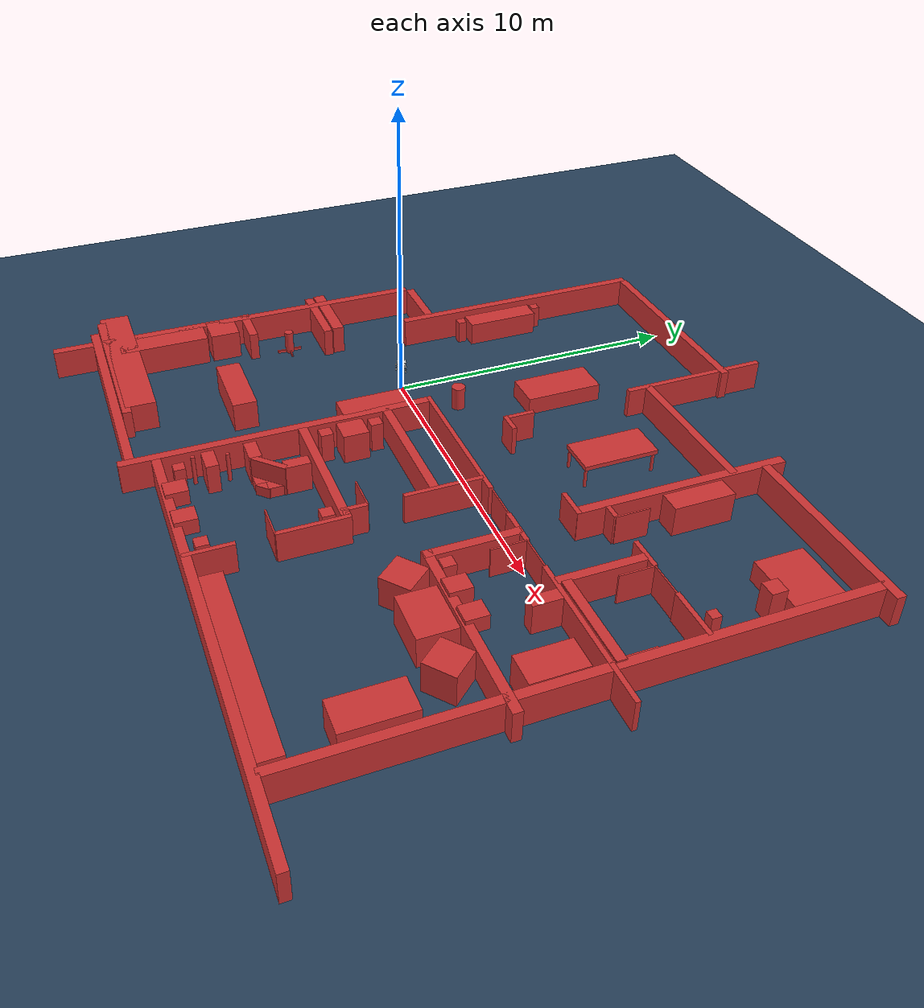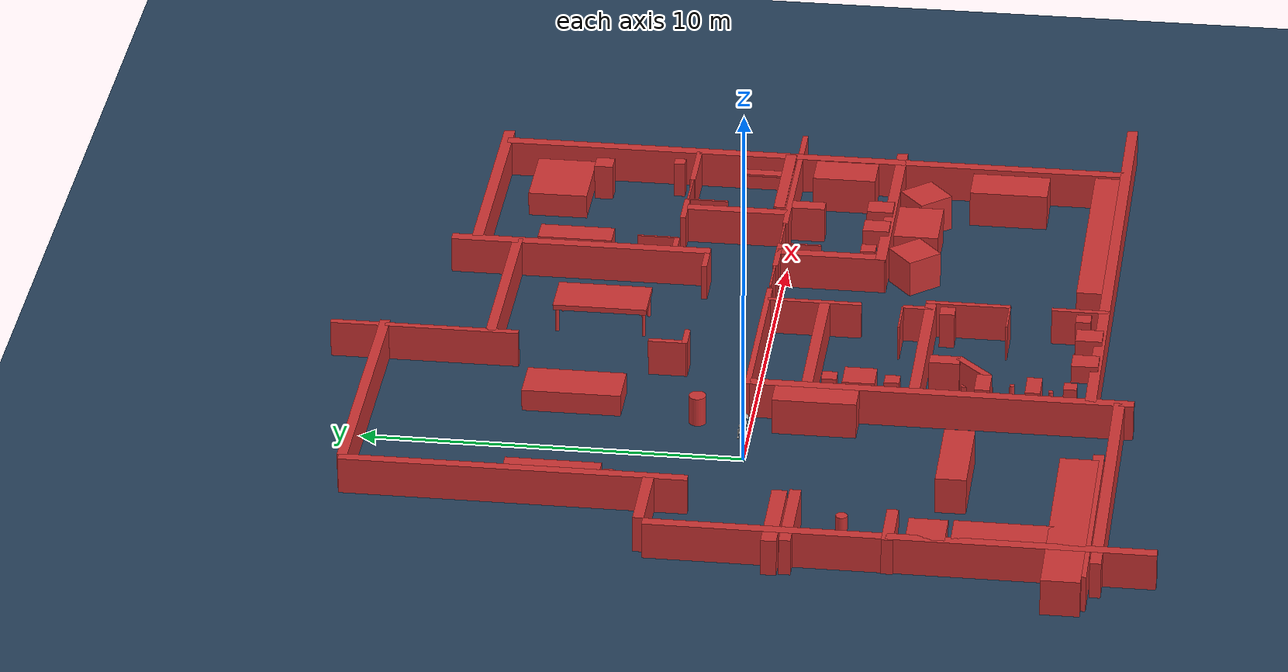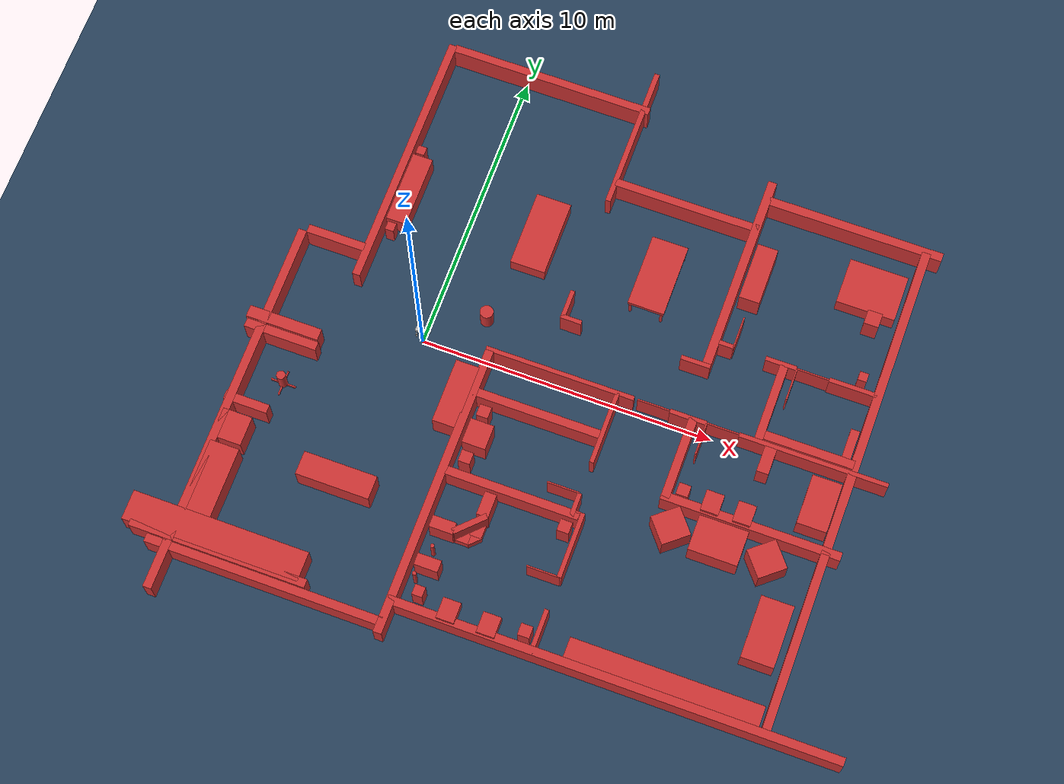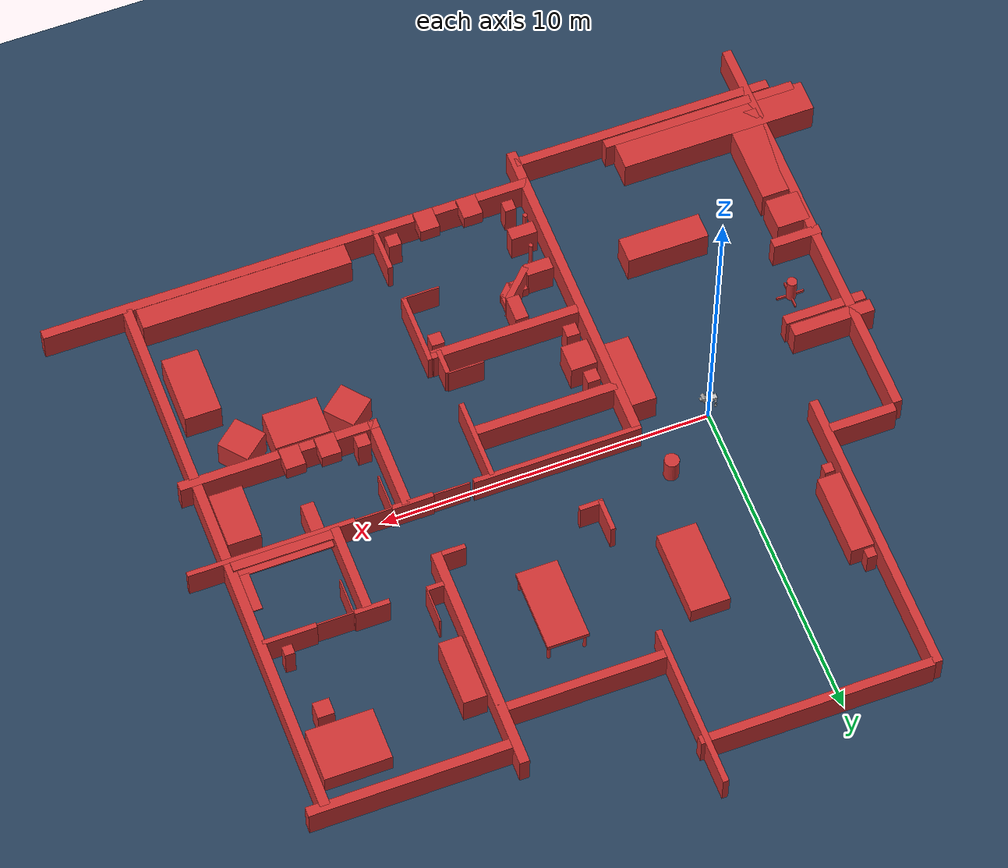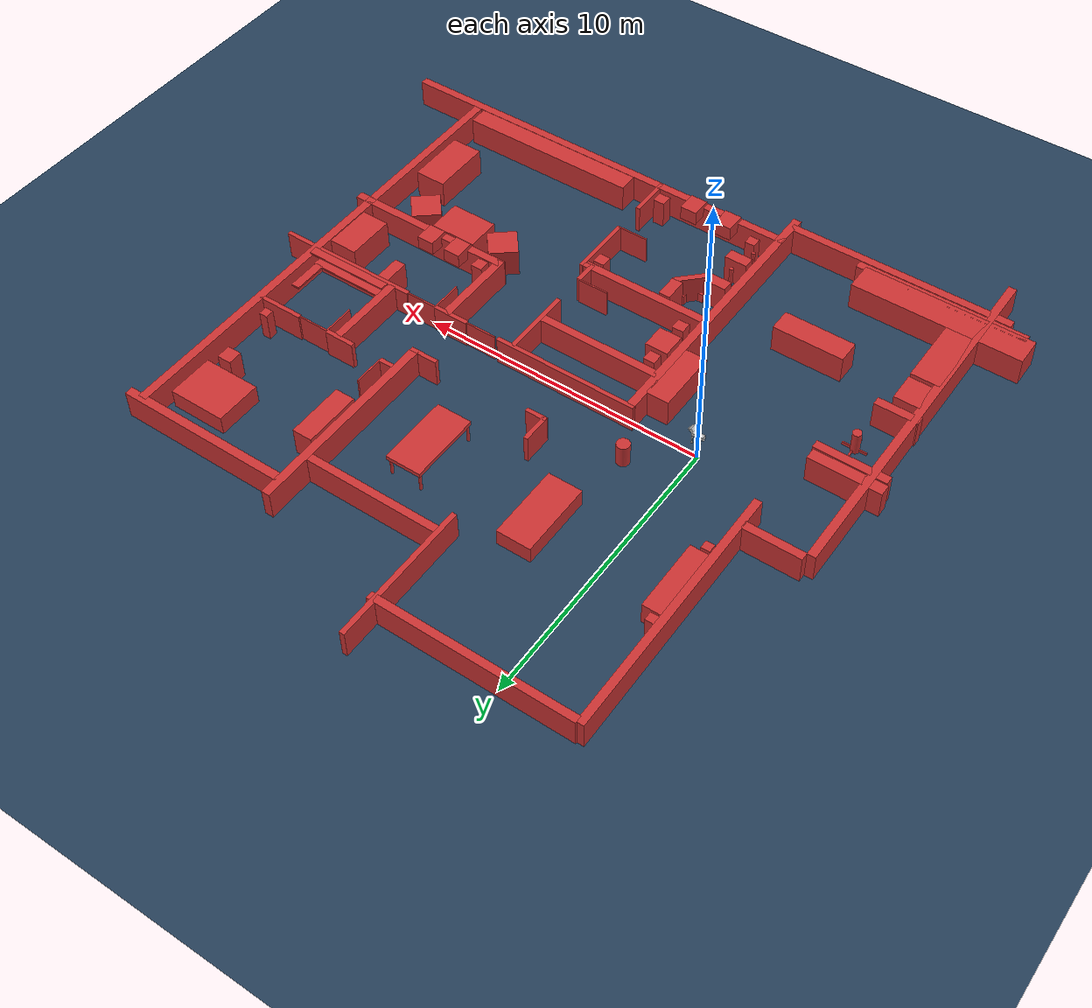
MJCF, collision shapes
<mujoco model="XXG scene">
  <include file="xxg.xml" />

  <statistic center="0 0 0.1" extent="0.8" />

  <visual>
    <headlight diffuse="0.6 0.6 0.6" ambient="0.3 0.3 0.3" specular="0 0 0" />
    <rgba haze="0.15 0.25 0.35 1" />
    <global azimuth="-130" elevation="-20" />
    <map znear="0.01" zfar="100"/>
  </visual>

  <asset>
    <texture type="skybox" builtin="gradient" rgb1="0.3 0.5 0.7" rgb2="0 0 0" width="512" height="3072" />
    <texture type="2d" name="groundplane" builtin="checker" mark="edge" rgb1="0.2 0.3 0.4" rgb2="0.1 0.2 0.3" markrgb="0.8 0.8 0.8" width="300" height="300" />
    <material name="groundplane" texture="groundplane" texuniform="true" texrepeat="5 5" reflectance="0.2" />
  <hfield name="perlin_hfield" size="1.0 0.75 0.2 0.2" file="../height_field.png" /><hfield name="image_hfield" size="1.0 1.0 0.02 0.1" file="../unitree_hfield.png" /></asset>

  <worldbody>
    <light pos="0 0 1.5" dir="0 0 -1" directional="true" />
    <geom name="floor" pos="0 0.0 0.01" size="0 0 0.05" type="plane" material="groundplane" />
<geom name="ps_Cube" type="box" size="0.135 4.5 0.5" pos="-2.74 5.61 0.51" quat="1.0 0.0 0.0 0.0" rgba="0.8 0.2 0.2 1"/>
<geom name="ps_Cube3" type="box" size="0.135 3.5 0.5" pos="0.86 10.03 0.51" quat="0.707107 0.0 0.0 -0.707107" rgba="0.8 0.2 0.2 1"/>
<geom name="ps_Cube4" type="box" size="0.09 2.5 0.5" pos="4.15 8.95 0.51" quat="0.0 0.0 0.0 -1.0" rgba="0.8 0.2 0.2 1"/>
<geom name="ps_Cube5" type="box" size="0.135 2.5 0.5" pos="6.66 7.19 0.51" quat="0.707107 0.0 0.0 -0.707107" rgba="0.8 0.2 0.2 1"/>
<geom name="ps_Cube6" type="box" size="0.15 3.5 0.5" pos="9.09 5.47 0.51" quat="0.0 0.0 0.0 -1.0" rgba="0.8 0.2 0.2 1"/>
<geom name="ps_Cube7" type="box" size="0.15 3.0 0.5" pos="12.19 8.29 0.51" quat="0.707107 0.0 0.0 0.707107" rgba="0.8 0.2 0.2 1"/>
<geom name="ps_Cube8" type="box" size="0.15 5.5 0.5" pos="14.65 2.77 0.51" quat="1.0 0.0 0.0 0.0" rgba="0.8 0.2 0.2 1"/>
<geom name="ps_Cube9" type="box" size="0.075 0.5 0.5" pos="8.73 2.04 0.51" quat="0.707107 0.0 0.0 -0.707107" rgba="0.8 0.2 0.2 1"/>
<geom name="ps_Cube10" type="box" size="0.075 0.25 0.5" pos="9.47 2.95 0.51" quat="0.707107 0.0 0.0 -0.707107" rgba="0.8 0.2 0.2 1"/>
<geom name="ps_Cube11" type="box" size="0.075 0.525 0.5" pos="11.35 2.94 0.51" quat="0.707107 0.0 0.0 -0.707107" rgba="0.8 0.2 0.2 1"/>
<geom name="ps_Cube12" type="box" size="0.075 0.8 0.5" pos="13.79 2.94 0.51" quat="0.707107 0.0 0.0 -0.707107" rgba="0.8 0.2 0.2 1"/>
<geom name="ps_Cube13" type="box" size="0.075 2.5 0.5" pos="13.35 0.16 0.51" quat="0.707107 0.0 0.0 -0.707107" rgba="0.8 0.2 0.2 1"/>
<geom name="ps_Cube14" type="box" size="0.14 1.35 0.5" pos="11.47 1.54 0.51" quat="0.0 0.0 0.0 -1.0" rgba="0.8 0.2 0.2 1"/>
<geom name="ps_Cube15" type="box" size="0.145 3.0 0.5" pos="12.15 -2.6 0.51" quat="0.707107 0.0 0.0 -0.707107" rgba="0.8 0.2 0.2 1"/>
<geom name="ps_Cube16" type="box" size="0.145 7.5 0.5" pos="9.71 -8.76 0.51" quat="0.707107 0.0 0.0 -0.707107" rgba="0.8 0.2 0.2 1"/>
<geom name="ps_Cube17" type="box" size="0.145 3.0 0.5" pos="14.65 -5.7 0.51" quat="0.0 0.0 0.0 -1.0" rgba="0.8 0.2 0.2 1"/>
<geom name="ps_Cube18" type="box" size="0.075 0.625 0.5" pos="9.12 0.16 0.51" quat="0.707107 0.0 0.0 -0.707107" rgba="0.8 0.2 0.2 1"/>
<geom name="ps_Cube19" type="box" size="0.145 1.45 0.5" pos="9.29 -1.26 0.51" quat="0.0 0.0 0.0 -1.0" rgba="0.8 0.2 0.2 1"/>
<geom name="ps_Cube20" type="box" size="0.025 0.55 0.5" pos="9.74 -0.39 0.51" quat="0.0 0.0 0.0 -1.0" rgba="0.8 0.2 0.2 1"/>
<geom name="ps_Cube21" type="box" size="0.025 0.55 0.5" pos="9.725 3.48 0.51" quat="0.0 0.0 0.0 -1.0" rgba="0.8 0.2 0.2 1"/>
<geom name="ps_Cube22" type="box" size="0.025 0.55 0.5" pos="7.94 0.17 0.51" quat="0.707107 0.0 0.0 -0.707107" rgba="0.8 0.2 0.2 1"/>
<geom name="ps_Cube23" type="box" size="0.075 2.55 0.5" pos="4.73 0.16 0.51" quat="0.707107 0.0 0.0 -0.707107" rgba="0.8 0.2 0.2 1"/>
<geom name="ps_Cube24" type="box" size="0.145 5.0 0.5" pos="2.32 -4.89 0.51" quat="1.0 0.0 0.0 -0.0" rgba="0.8 0.2 0.2 1"/>
<geom name="ps_Cube25" type="box" size="0.145 6.5 0.5" pos="-4.98 -4.51 0.51" quat="1.0 0.0 0.0 -0.0" rgba="0.8 0.2 0.2 1"/>
<geom name="ps_Cube26" type="box" size="0.145 1.0 0.5" pos="-3.84 2.11 0.51" quat="0.707107 0.0 0.0 -0.707107" rgba="0.8 0.2 0.2 1"/>
<geom name="ps_Cube27" type="box" size="0.145 4.0 0.5" pos="-1.68 -9.51 0.51" quat="0.707107 0.0 0.0 0.707107" rgba="0.8 0.2 0.2 1"/>
<geom name="ps_Cube28" type="box" size="0.145 3.0 0.5" pos="-3.35 -9.19 0.51" quat="0.707107 0.0 0.0 0.707107" rgba="0.8 0.2 0.2 1"/>
<geom name="ps_Cube29" type="box" size="0.5 3.0 0.5" pos="-3.63 -8.71 0.51" quat="0.707107 0.0 0.0 0.707107" rgba="0.8 0.2 0.2 1"/>
<geom name="ps_Cube30" type="box" size="0.5 1.5 0.5" pos="-4.51 -7.31 0.51" quat="1.0 0.0 0.0 -0.0" rgba="0.8 0.2 0.2 1"/>
<geom name="ps_Cube31" type="box" size="0.5 0.5 0.5" pos="-4.53 -5.17 0.51" quat="1.0 0.0 0.0 -0.0" rgba="0.8 0.2 0.2 1"/>
<geom name="ps_Cube32" type="box" size="0.75 0.15 0.5" pos="-4.42 -4.23 0.51" quat="1.0 0.0 0.0 -0.0" rgba="0.8 0.2 0.2 1"/>
<geom name="ps_Cube33" type="box" size="1.25 0.15 0.5" pos="-4.25 -1.68 0.51" quat="1.0 0.0 0.0 -0.0" rgba="0.8 0.2 0.2 1"/>
<geom name="ps_Cube34" type="box" size="1.25 0.2 0.5" pos="-4.32 -1.28 0.51" quat="1.0 0.0 0.0 -0.0" rgba="0.8 0.2 0.2 1"/>
<geom name="ps_Cube35" type="box" size="1.25 0.4 0.5" pos="-0.78 -5.54 0.51" quat="1.0 0.0 0.0 -0.0" rgba="0.8 0.2 0.2 1"/>
<geom name="ps_Cube36" type="box" size="1.1 0.4 0.5" pos="1.82 -1.66 0.51" quat="0.707107 0.0 0.0 0.707107" rgba="0.8 0.2 0.2 1"/>
<geom name="ps_Cube37" type="box" size="0.075 1.25 0.5" pos="6.71 -1.1 0.51" quat="0.0 0.0 0.0 -1.0" rgba="0.8 0.2 0.2 1"/>
<geom name="ps_Cube38" type="box" size="0.075 0.4 0.5" pos="6.71 -3.85 0.51" quat="0.0 0.0 0.0 -1.0" rgba="0.8 0.2 0.2 1"/>
<geom name="ps_Cube39" type="box" size="0.075 1.115 0.5" pos="7.03 -5.15 0.51" quat="0.0 0.0 0.0 -1.0" rgba="0.8 0.2 0.2 1"/>
<geom name="ps_Cube40" type="box" size="0.1 0.1 0.5" pos="6.87 -4.13 0.51" quat="0.0 0.0 0.0 -1.0" rgba="0.8 0.2 0.2 1"/>
<geom name="ps_Cube41" type="box" size="0.145 2.25 0.5" pos="4.69 -4.17 0.51" quat="0.707107 0.0 0.0 -0.707107" rgba="0.8 0.2 0.2 1"/>
<geom name="ps_Cube42" type="box" size="0.025 0.55 0.5" pos="6.16 -3.44 0.51" quat="0.707107 0.0 0.0 -0.707107" rgba="0.8 0.2 0.2 1"/>
<geom name="ps_Cube43" type="box" size="0.025 0.55 0.5" pos="6.49 -6.26 0.51" quat="0.707107 0.0 0.0 -0.707107" rgba="0.8 0.2 0.2 1"/>
<geom name="ps_Cube44" type="box" size="0.145 2.15 0.5" pos="4.49 -1.37 0.51" quat="0.707107 0.0 0.0 -0.707107" rgba="0.8 0.2 0.2 1"/>
<geom name="ps_Cube45" type="box" size="0.025 0.55 0.5" pos="11.89 2.37 0.51" quat="0.0 0.0 0.0 -1.0" rgba="0.8 0.2 0.2 1"/>
<geom name="ps_Cube46" type="box" size="0.15 1.5 0.025" pos="13.11 0.41 0.61" quat="0.707107 0.0 0.0 -0.707107" rgba="0.8 0.2 0.2 1"/>
<geom name="ps_Cube47" type="box" size="0.15 1.5 0.025" pos="13.11 0.41 1.05" quat="0.707107 0.0 0.0 -0.707107" rgba="0.8 0.2 0.2 1"/>
<geom name="ps_Cube48" type="box" size="0.15 0.6 0.025" pos="14.31 1.12 0.61" quat="1.0 0.0 0.0 -0.0" rgba="0.8 0.2 0.2 1"/>
<geom name="ps_Cube52" type="box" size="0.35 1.25 0.4" pos="-2.25 4.68 0.39" quat="1.0 0.0 0.0 0.0" rgba="0.8 0.2 0.2 1"/>
<geom name="ps_Cube53" type="box" size="0.15 0.15 0.4" pos="-2.39 6.14 0.39" quat="1.0 0.0 0.0 0.0" rgba="0.8 0.2 0.2 1"/>
<geom name="ps_Cube54" type="box" size="0.15 0.15 0.4" pos="-2.34 3.19 0.39" quat="1.0 0.0 0.0 0.0" rgba="0.8 0.2 0.2 1"/>
<geom name="ps_Cube59" type="box" size="0.6 1.3 0.3" pos="2.4 4.74 0.32" quat="1.0 0.0 0.0 0.0" rgba="0.8 0.2 0.2 1"/>
<geom name="ps_Cube60" type="box" size="0.075 0.5 0.5" pos="4.15 2.51 0.51" quat="1.0 0.0 0.0 0.0" rgba="0.8 0.2 0.2 1"/>
<geom name="ps_Cube61" type="box" size="0.075 0.36 0.5" pos="4.44 2.05 0.51" quat="0.707107 0.0 0.0 0.707107" rgba="0.8 0.2 0.2 1"/>
<geom name="ps_Cube62" type="box" size="0.625 1.25 0.075" pos="6.58 4.55 0.78" quat="1.0 0.0 0.0 0.0" rgba="0.8 0.2 0.2 1"/>
<geom name="ps_Cube69" type="box" size="0.35 1.0 0.5" pos="9.68 5.68 0.51" quat="0.0 0.0 0.0 -1.0" rgba="0.8 0.2 0.2 1"/>
<geom name="ps_Cube70" type="box" size="0.25 0.25 0.5" pos="13.69 5.45 0.51" quat="0.0 0.0 0.0 -1.0" rgba="0.8 0.2 0.2 1"/>
<geom name="ps_Cube72" type="box" size="0.15 0.15 0.5" pos="13.99 3.41 0.51" quat="0.0 0.0 0.0 -1.0" rgba="0.8 0.2 0.2 1"/>
<geom name="ps_Cube73" type="box" size="1.0 0.8 0.35" pos="13.36 6.57 0.3" quat="0.0 0.0 0.0 -1.0" rgba="0.8 0.2 0.2 1"/>
<geom name="ps_Cube74" type="box" size="0.5 0.85 0.5" pos="13.97 -1.16 0.51" quat="0.0 0.0 0.0 -1.0" rgba="0.8 0.2 0.2 1"/>
<geom name="ps_Cube75" type="box" size="0.2 0.45 0.5" pos="11.94 -0.36 0.51" quat="0.0 0.0 0.0 -1.0" rgba="0.8 0.2 0.2 1"/>
<geom name="ps_Cube76" type="box" size="0.3 0.35 0.25" pos="11.84 -2.33 0.89" quat="0.0 0.0 0.0 -1.0" rgba="0.8 0.2 0.2 1"/>
<geom name="ps_Cube77" type="box" size="0.3 0.35 0.25" pos="10.77 -2.33 0.89" quat="0.0 0.0 0.0 -1.0" rgba="0.8 0.2 0.2 1"/>
<geom name="ps_Cube78" type="box" size="0.2 0.2 0.5" pos="9.77 -2.21 0.5" quat="0.0 0.0 0.0 -1.0" rgba="0.8 0.2 0.2 1"/>
<geom name="ps_Cube79" type="box" size="0.5 0.5 0.5" pos="9.77 -3.46 0.5" quat="0.90559 0.0 0.0 -0.424155" rgba="0.8 0.2 0.2 1"/>
<geom name="ps_Cube80" type="box" size="0.5 0.5 0.5" pos="12.97 -3.46 0.5" quat="0.90559 0.0 0.0 -0.424155" rgba="0.8 0.2 0.2 1"/>
<geom name="ps_Cube81" type="box" size="0.825 0.6 0.5" pos="11.34 -3.41 0.5" quat="1.0 0.0 0.0 0.0" rgba="0.8 0.2 0.2 1"/>
<geom name="ps_Cube82" type="box" size="0.55 1.05 0.5" pos="13.72 -5.68 0.5" quat="1.0 0.0 0.0 0.0" rgba="0.8 0.2 0.2 1"/>
<geom name="ps_Cube83" type="box" size="3.2 0.35 0.5" pos="11.21 -8.29 0.5" quat="1.0 0.0 0.0 0.0" rgba="0.8 0.2 0.2 1"/>
<geom name="ps_Cube84" type="box" size="0.075 0.75 0.5" pos="7.03 -8.12 0.51" quat="0.0 0.0 0.0 -1.0" rgba="0.8 0.2 0.2 1"/>
<geom name="ps_Cube85" type="box" size="0.3 0.35 0.25" pos="5.51 -8.48 0.89" quat="0.0 0.0 0.0 -1.0" rgba="0.8 0.2 0.2 1"/>
<geom name="ps_Cube86" type="box" size="0.3 0.35 0.25" pos="4.17 -8.48 0.89" quat="0.0 0.0 0.0 -1.0" rgba="0.8 0.2 0.2 1"/>
<geom name="ps_Cube87" type="box" size="0.2 0.2 0.5" pos="2.88 -1.91 0.5" quat="0.0 0.0 0.0 -1.0" rgba="0.8 0.2 0.2 1"/>
<geom name="ps_Cube88" type="box" size="0.2 0.2 0.5" pos="2.88 -3.55 0.5" quat="0.0 0.0 0.0 -1.0" rgba="0.8 0.2 0.2 1"/>
<geom name="ps_Cube89" type="box" size="0.4 0.425 0.5" pos="2.97 -2.69 0.5" quat="0.0 0.0 0.0 -1.0" rgba="0.8 0.2 0.2 1"/>
<geom name="ps_Cube90" type="box" size="0.2 0.2 0.5" pos="6.63 -8.24 0.5" quat="0.0 0.0 0.0 -1.0" rgba="0.8 0.2 0.2 1"/>
<geom name="ps_Cube91" type="box" size="0.2 0.2 0.5" pos="6.63 -4.64 0.5" quat="0.0 0.0 0.0 -1.0" rgba="0.8 0.2 0.2 1"/>
<geom name="ps_Cube92" type="box" size="0.175 0.175 0.5" pos="3.05 -8.18 0.5" quat="0.0 0.0 0.0 -1.0" rgba="0.8 0.2 0.2 1"/>
<geom name="ps_Cube93" type="box" size="0.4 0.2 0.5" pos="2.99 -7.23 0.5" quat="0.0 0.0 0.0 -1.0" rgba="0.8 0.2 0.2 1"/>
<geom name="ps_Cylinder"  type="cylinder" size="0.065 0.5" pos="2.72 -7.7 0.5" rgba="0.8 0.2 0.2 1"/>
<geom name="ps_Cylinder2"  type="cylinder" size="0.065 0.5" pos="2.93 -6.67 0.5" rgba="0.8 0.2 0.2 1"/>
<geom name="ps_Cube94" type="box" size="0.4 0.2 0.5" pos="2.99 -5.91 0.5" quat="0.0 0.0 0.0 -1.0" rgba="0.8 0.2 0.2 1"/>
<geom name="ps_Cube95" type="box" size="0.4 0.2 0.5" pos="4.06 -4.81 0.5" quat="0.707107 0.0 0.0 -0.707107" rgba="0.8 0.2 0.2 1"/>
<geom name="ps_Cube96" type="box" size="0.1 0.6 0.5" pos="3.78 -5.59 0.5" quat="0.92388 0.0 0.0 -0.382683" rgba="0.8 0.2 0.2 1"/>
<geom name="ps_Cube97" type="box" size="0.2 0.25 0.2" pos="3.93 -5.78 0.14" quat="0.92388 0.0 0.0 -0.382683" rgba="0.8 0.2 0.2 1"/>
<geom name="ps_Cube98" type="box" size="0.2 0.25 0.2" pos="4.02 -5.51 0.14" quat="1.0 0.0 0.0 0.0" rgba="0.8 0.2 0.2 1"/>
<geom name="ps_Cube99" type="box" size="0.2 0.25 0.2" pos="3.62 -5.88 0.14" quat="0.707107 0.0 0.0 0.707107" rgba="0.8 0.2 0.2 1"/>
<geom name="ps_Cylinder27"  type="cylinder" size="0.05 0.35" pos="7.11 3.38 0.39" rgba="0.8 0.2 0.2 1"/>
<geom name="ps_Cylinder28"  type="cylinder" size="0.05 0.35" pos="6.04 3.38 0.39" rgba="0.8 0.2 0.2 1"/>
<geom name="ps_Cylinder29"  type="cylinder" size="0.05 0.35" pos="6.04 5.69 0.39" rgba="0.8 0.2 0.2 1"/>
<geom name="ps_Cylinder30"  type="cylinder" size="0.05 0.35" pos="7.12 5.69 0.39" rgba="0.8 0.2 0.2 1"/>
<geom name="ps_Cylinder31"  type="cylinder" size="0.15 0.4" pos="-3.77 -2.94 0.4" rgba="0.8 0.2 0.2 1"/>
<geom name="ps_Cube100" type="box" size="0.425 0.025 0.05" pos="-3.75 -2.95 0.06" quat="1.0 0.0 0.0 -0.0" rgba="0.8 0.2 0.2 1"/>
<geom name="ps_Cube101" type="box" size="0.425 0.025 0.05" pos="-3.75 -2.95 0.06" quat="0.707107 0.0 0.0 -0.707107" rgba="0.8 0.2 0.2 1"/>
<geom name="ps_Cube49" type="box" size="0.025 0.55 0.5" pos="10.3 0.17 0.51" quat="0.707107 0.0 0.0 -0.707107" rgba="0.8 0.2 0.2 1"/>
<geom name="ps_Cube50" type="box" size="0.025 0.55 0.5" pos="12.44 2.93 0.51" quat="0.707107 0.0 0.0 -0.707107" rgba="0.8 0.2 0.2 1"/>
<geom name="ps_Cylinder32"  type="cylinder" size="0.225 0.4" pos="1.73 1.41 0.43" rgba="0.8 0.2 0.2 1"/>
    </worldbody>
</mujoco>

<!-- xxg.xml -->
<mujoco model="DOG">
  <compiler angle="radian" meshdir="assets/"/>

  <asset>
    <mesh name="BASE_LINK" file="BASE_LINK.STL"/>
    <mesh name="FBL_ABAD_LINK" file="FBL_ABAD_LINK.STL"/>
    <mesh name="FBL_HIP_LINK" file="FBL_HIP_LINK.STL"/>
    <mesh name="FBL_KNEE_LINK" file="FBL_KNEE_LINK.STL"/>
    <mesh name="FBL_FOOT_LINK" file="FBL_FOOT_LINK.STL"/>
    <mesh name="FAR_ABAD_LINK" file="FAR_ABAD_LINK.STL"/>
    <mesh name="FAR_HIP_LINK" file="FAR_HIP_LINK.STL"/>
    <mesh name="FAR_KNEE_LINK" file="FAR_KNEE_LINK.STL"/>
    <mesh name="FAR_FOOT_LINK" file="FAR_FOOT_LINK.STL"/>
    <mesh name="RAR_ABAD_LINK" file="RAR_ABAD_LINK.STL"/>
    <mesh name="RAR_HIP_LINK" file="RAR_HIP_LINK.STL"/>
    <mesh name="RAR_KNEE_LINK" file="RAR_KNEE_LINK.STL"/>
    <mesh name="RAR_FOOT_LINK" file="RAR_FOOT_LINK.STL"/>
    <mesh name="RBL_ABAD_LINK" file="RBL_ABAD_LINK.STL"/>
    <mesh name="RBL_HIP_LINK" file="RBL_HIP_LINK.STL"/>
    <mesh name="RBL_KNEE_LINK" file="RBL_KNEE_LINK.STL"/>
    <mesh name="RBL_FOOT_LINK" file="RBL_FOOT_LINK.STL"/>
    <mesh name="HEAD1_LINK" file="HEAD1_LINK.STL"/>
    <mesh name="HEAD2_LINK" file="HEAD2_LINK.STL"/>
  </asset>

  <worldbody>
    <body name="BASE_LINK" pos="0 0 1.0">
      <inertial pos="1.8341473e-02 -1.9475667e-04 1.6646741e-02" quat="-0 0 0 1" mass="5.6608325" diaginertia="0.039340224 8.8059075e-02 7.6312096e-02"/>
      <freejoint />
      <site name="imu" pos="0.0 0 0.0" />
    <!-- add livox_imu -->
    <site name="livox_imu" pos="0.18 0.0 0.3" quat="1.0 0.0 0.0 0.0"/>
    <!-- add camera imu -->
    <site name="camera_imu" pos="0.18 0.0 0.3" quat="1.0 0.0 0.0 0.0"/>

    <geom type="mesh" contype="0" conaffinity="0" group="1" density="0" rgba="0.75294 0.75294 0.75294 1.0" mesh="BASE_LINK"/>
    <geom size="0.2 0.075 0.055" type="box" rgba="0.75294 0.75294 0.75294 0.0"/>
    <geom pos="0.1775 0 0.1164" quat="0.965249 0 0.26133 0" type="mesh" contype="0" conaffinity="0" group="1" density="0" rgba="0.75294 0.75294 0.75294 1.0" mesh="HEAD1_LINK"/>
    <geom pos="0.1775 0 0.1164" quat="0.965249 0 0.26133 0" type="mesh" contype="0" conaffinity="0" group="1" density="0" rgba="0.75294 0.75294 0.75294 1.0" mesh="HEAD2_LINK"/>
    <geom size="0.05 0.1 0.06" pos="0.204181 0 0.181884" quat="0.965249 0 0.26133 0" type="box" rgba="0.75294 0.75294 0.75294 0.0"/>
    <geom size="0.035 0.05 0.04" pos="0.27432 0 0.123528" quat="0.965249 0 0.26133 0" type="box" rgba="0.75294 0.75294 0.75294 0.0"/>
    <body name="FBL_ABAD_LINK" pos="0.1305 0.0377 0">
      <inertial pos="-0.0258732 0.00474653 0" quat="0.446156 0.446156 0.548585 0.548585" mass="0.29007" diaginertia="0.000234429 0.000228281 4.61129e-05"/>
      <joint name="FBL_ABAD_JOINT" pos="0 0 0" axis="1 0 0" range="-0.4887 0.4887" actuatorfrcrange="-20 20"/>
      <geom type="mesh" contype="0" conaffinity="0" group="1" density="0" rgba="0.75294 0.75294 0.75294 1.0" mesh="FBL_ABAD_LINK"/>
      <body name="FBL_HIP_LINK">
        <inertial pos="0 0.0475203 -0.0615104" quat="0.992663 0.120643 7.95638e-06 -0.00808508" mass="0.698577" diaginertia="0.00315469 0.00310141 0.000383698"/>
        <joint name="FBL_HIP_JOINT" pos="0 0 0" axis="0 1 0" range="-2.967 2.967" actuatorfrcrange="-20 20"/>
        <geom type="mesh" contype="0" conaffinity="0" group="1" density="0" rgba="0.75294 0.75294 0.75294 1.0" mesh="FBL_HIP_LINK"/>
        <geom size="0.025 0.015 0.03" pos="-0.01 0.085 -0.06" type="box" rgba="0.75294 0.75294 0.75294 1.0"/>
        <body name="FBL_KNEE_LINK" pos="0 0.08786 -0.1307">
          <inertial pos="0.00368489 0.0063771 -0.0635258" quat="0.608469 0.0177668 -0.0332576 0.792681" mass="0.288584" diaginertia="0.00161384 0.00159203 5.37708e-05"/>
          <joint name="FBL_KNEE_JOINT" pos="0 0 0" axis="0 1 0" range="-2.723 2.702" actuatorfrcrange="-20 20"/>
          <geom type="mesh" contype="0" conaffinity="0" group="1" density="0" rgba="0.49804 0.49804 0.49804 1.0" mesh="FBL_KNEE_LINK"/>
          <geom size="0.015 0.01 0.045" pos="0 0 -0.05" quat="0.994493 0 0.104807 0" type="box" rgba="0.49804 0.49804 0.49804 1.0"/>
          <geom pos="0 0 -0.1425" type="mesh" contype="0" conaffinity="0" group="1" density="0" rgba="0.75294 0.75294 0.75294 1.0" mesh="FBL_FOOT_LINK"/>
          <geom size="0.03" pos="0 0 -0.1425" quat="0.707388 0.706825 0 0" rgba="0.75294 0.75294 0.75294 1.0"/>
        </body>
      </body>
    </body>
    <body name="FAR_ABAD_LINK" pos="0.1305 -0.0377 0">
      <inertial pos="-0.0258732 -0.00474653 0" quat="0.548585 0.548585 0.446156 0.446156" mass="0.29007" diaginertia="0.000234429 0.000228281 4.61129e-05"/>
      <joint name="FAR_ABAD_JOINT" pos="0 0 0" axis="1 0 0" range="-0.4887 0.4887" actuatorfrcrange="-20 20"/>
      <geom type="mesh" contype="0" conaffinity="0" group="1" density="0" rgba="0.75294 0.75294 0.75294 1.0" mesh="FAR_ABAD_LINK"/>
      <body name="FAR_HIP_LINK">
        <inertial pos="0 -0.0475203 -0.0615104" quat="0.992663 -0.120643 7.95638e-06 0.00808508" mass="0.698577" diaginertia="0.00315469 0.00310141 0.000383698"/>
        <joint name="FAR_HIP_JOINT" pos="0 0 0" axis="0 1 0" range="-2.967 2.967" actuatorfrcrange="-20 20"/>
        <geom type="mesh" contype="0" conaffinity="0" group="1" density="0" rgba="0.75294 0.75294 0.75294 1.0" mesh="FAR_HIP_LINK"/>
        <geom size="0.025 0.015 0.03" pos="-0.01 -0.085 -0.06" type="box" rgba="0.75294 0.75294 0.75294 1.0"/>
        <body name="FAR_KNEE_LINK" pos="0 -0.08786 -0.1307">
          <inertial pos="0.00368489 -0.0063771 -0.0635258" quat="0.792681 -0.0332576 0.0177668 0.608469" mass="0.288584" diaginertia="0.00161384 0.00159203 5.37708e-05"/>
          <joint name="FAR_KNEE_JOINT" pos="0 0 0" axis="0 1 0" range="-2.723 2.702" actuatorfrcrange="-20 20"/>
          <geom type="mesh" contype="0" conaffinity="0" group="1" density="0" rgba="0.49804 0.49804 0.49804 1.0" mesh="FAR_KNEE_LINK"/>
          <geom size="0.015 0.01 0.045" pos="0 0 -0.05" quat="0.994493 0 0.104807 0" type="box" rgba="0.49804 0.49804 0.49804 1.0"/>
          <geom pos="0 0 -0.1425" type="mesh" contype="0" conaffinity="0" group="1" density="0" rgba="0.75294 0.75294 0.75294 1.0" mesh="FAR_FOOT_LINK"/>
          <geom size="0.03" pos="0 0 -0.1425" quat="0.707388 0.706825 0 0" rgba="0.75294 0.75294 0.75294 1.0"/>
        </body>
      </body>
    </body>
    <body name="RAR_ABAD_LINK" pos="-0.1305 -0.0377 0">
      <inertial pos="0.0258732 -0.00474653 0" quat="0.446156 0.446156 0.548585 0.548585" mass="0.29007" diaginertia="0.000234429 0.000228281 4.61129e-05"/>
      <joint name="RAR_ABAD_JOINT" pos="0 0 0" axis="1 0 0" range="-0.4887 0.4887" actuatorfrcrange="-20 20"/>
      <geom type="mesh" contype="0" conaffinity="0" group="1" density="0" rgba="0.75294 0.75294 0.75294 1.0" mesh="RAR_ABAD_LINK"/>
      <body name="RAR_HIP_LINK">
        <inertial pos="0 -0.0475203 -0.0615104" quat="0.992663 -0.120643 7.95638e-06 0.00808508" mass="0.698577" diaginertia="0.00315469 0.00310141 0.000383698"/>
        <joint name="RAR_HIP_JOINT" pos="0 0 0" axis="0 1 0" range="-2.967 2.967" actuatorfrcrange="-20 20"/>
        <geom type="mesh" contype="0" conaffinity="0" group="1" density="0" rgba="0.75294 0.75294 0.75294 1.0" mesh="RAR_HIP_LINK"/>
        <geom size="0.025 0.015 0.03" pos="0 -0.085 -0.06" type="box" rgba="0.75294 0.75294 0.75294 1.0"/>
        <body name="RAR_KNEE_LINK" pos="0 -0.08786 -0.1307">
          <inertial pos="0.00368489 -0.0063771 -0.0634925" quat="0.792566 -0.0333078 0.0177921 0.608615" mass="0.288584" diaginertia="0.0016124 0.00159058 5.37526e-05"/>
          <joint name="RAR_KNEE_JOINT" pos="0 0 0" axis="0 1 0" range="-2.723 2.702" actuatorfrcrange="-20 20"/>
          <geom type="mesh" contype="0" conaffinity="0" group="1" density="0" rgba="0.49804 0.49804 0.49804 1.0" mesh="RAR_KNEE_LINK"/>
          <geom size="0.015 0.01 0.045" pos="-0.01 0 -0.04" quat="0.930508 0 0.366273 0" type="box" rgba="0.49804 0.49804 0.49804 1.0"/>
          <geom pos="0 0 -0.1357" quat="1 0 0 0" type="mesh" contype="0" conaffinity="0" group="1" density="0" rgba="0.75294 0.75294 0.75294 1.0" mesh="RAR_FOOT_LINK"/>
          <geom size="0.03" pos="0 0 -0.1357" quat="0.707388 0.706825 0 0" rgba="0.75294 0.75294 0.75294 1.0"/>
        </body>
      </body>
    </body>
    <body name="RBL_ABAD_LINK" pos="-0.1305 0.0377 0">
      <inertial pos="0.0258732 0.00474653 0" quat="0.548585 0.548585 0.446156 0.446156" mass="0.29007" diaginertia="0.000234429 0.000228281 4.61129e-05"/>
      <joint name="RBL_ABAD_JOINT" pos="0 0 0" axis="1 0 0" range="-0.4887 0.4887" actuatorfrcrange="-20 20"/>
      <geom type="mesh" contype="0" conaffinity="0" group="1" density="0" rgba="0.75294 0.75294 0.75294 1.0" mesh="RBL_ABAD_LINK"/>
      <body name="RBL_HIP_LINK">
        <inertial pos="0 0.0475203 -0.0615104" quat="0.992663 0.120643 7.95638e-06 -0.00808508" mass="0.698577" diaginertia="0.00315469 0.00310141 0.000383698"/>
        <joint name="RBL_HIP_JOINT" pos="0 0 0" axis="0 1 0" range="-2.967 2.967" actuatorfrcrange="-20 20"/>
        <geom type="mesh" contype="0" conaffinity="0" group="1" density="0" rgba="0.75294 0.75294 0.75294 1.0" mesh="RBL_HIP_LINK"/>
        <geom size="0.025 0.015 0.03" pos="0 0.085 -0.06" type="box" rgba="0.75294 0.75294 0.75294 1.0"/>
        <body name="RBL_KNEE_LINK" pos="0 0.08786 -0.1307">
          <inertial pos="0.00368489 0.0063771 -0.0634925" quat="0.608615 0.0177921 -0.0333078 0.792566" mass="0.288584" diaginertia="0.0016124 0.00159058 5.37526e-05"/>
          <joint name="RBL_KNEE_JOINT" pos="0 0 0" axis="0 1 0" range="-2.723 2.702" actuatorfrcrange="-20 20"/>
          <geom type="mesh" contype="0" conaffinity="0" group="1" density="0" rgba="0.49804 0.49804 0.49804 1.0" mesh="RBL_KNEE_LINK"/>
          <geom size="0.015 0.01 0.045" pos="-0.01 0 -0.04" quat="0.930508 0 0.366273 0" type="box" rgba="0.49804 0.49804 0.49804 1.0"/>
          <geom pos="0 0 -0.1357" quat="1 0 0 0" type="mesh" contype="0" conaffinity="0" group="1" density="0" rgba="0.75294 0.75294 0.75294 1.0" mesh="RBL_FOOT_LINK"/>
          <geom size="0.03" pos="0 0 -0.1357" quat="0.707388 0.706825 0 0" rgba="0.75294 0.75294 0.75294 1.0"/>
        </body>
      </body>
    </body>
  </body>
  </worldbody>
    <actuator>
        <motor name="FR_ABAD_LINK" joint="FAR_ABAD_JOINT" />
        <motor name="FR_HIP_LINK" joint="FAR_HIP_JOINT" />
        <motor name="FR_KNEE_LINK" joint="FAR_KNEE_JOINT" />
        <motor name="FL_ABAD_LINK" joint="FBL_ABAD_JOINT" />
        <motor name="FL_HIP_LINK" joint="FBL_HIP_JOINT" />
        <motor name="FL_KNEE_LINK" joint="FBL_KNEE_JOINT" />
        <motor name="RR_ABAD_LINK" joint="RAR_ABAD_JOINT" />
        <motor name="RR_HIP_LINK" joint="RAR_HIP_JOINT" />
        <motor name="RR_KNEE_LINK" joint="RAR_KNEE_JOINT" />
        <motor name="RL_ABAD_LINK" joint="RBL_ABAD_JOINT" />
        <motor name="RL_HIP_LINK" joint="RBL_HIP_JOINT" />
        <motor name="RL_KNEE_LINK" joint="RBL_KNEE_JOINT" />
    </actuator>

    <sensor>
        <jointpos name="FR_hip_pos" joint="FAR_ABAD_JOINT" />
        <jointpos name="FR_thigh_pos" joint="FAR_HIP_JOINT" />
        <jointpos name="FR_calf_pos" joint="FAR_KNEE_JOINT" />
        <jointpos name="FL_hip_pos" joint="FBL_ABAD_JOINT" />
        <jointpos name="FL_thigh_pos" joint="FBL_HIP_JOINT" />
        <jointpos name="FL_calf_pos" joint="FBL_KNEE_JOINT" />
        <jointpos name="RR_hip_pos" joint="RAR_ABAD_JOINT" />
        <jointpos name="RR_thigh_pos" joint="RAR_HIP_JOINT" />
        <jointpos name="RR_calf_pos" joint="RAR_KNEE_JOINT" />
        <jointpos name="RL_hip_pos" joint="RBL_ABAD_JOINT" />
        <jointpos name="RL_thigh_pos" joint="RBL_HIP_JOINT" />
        <jointpos name="RL_calf_pos" joint="RBL_KNEE_JOINT" />

        <jointvel name="FR_hip_vel" joint="FAR_ABAD_JOINT" />
        <jointvel name="FR_thigh_vel" joint="FAR_HIP_JOINT" />
        <jointvel name="FR_calf_vel" joint="FAR_KNEE_JOINT" />
        <jointvel name="FL_hip_vel" joint="FBL_ABAD_JOINT" />
        <jointvel name="FL_thigh_vel" joint="FBL_HIP_JOINT" />
        <jointvel name="FL_calf_vel" joint="FBL_KNEE_JOINT" />
        <jointvel name="RR_hip_vel" joint="RAR_ABAD_JOINT" />
        <jointvel name="RR_thigh_vel" joint="RAR_HIP_JOINT" />
        <jointvel name="RR_calf_vel" joint="RAR_KNEE_JOINT" />
        <jointvel name="RL_hip_vel" joint="RBL_ABAD_JOINT" />
        <jointvel name="RL_thigh_vel" joint="RBL_HIP_JOINT" />
        <jointvel name="RL_calf_vel" joint="RBL_KNEE_JOINT" />

        <jointactuatorfrc name="FR_hip_torque" joint="FAR_ABAD_JOINT" noise="0.01" />
        <jointactuatorfrc name="FR_thigh_torque" joint="FAR_HIP_JOINT" noise="0.01" />
        <jointactuatorfrc name="FR_calf_torque" joint="FAR_KNEE_JOINT" noise="0.01" />
        <jointactuatorfrc name="FL_hip_torque" joint="FBL_ABAD_JOINT" noise="0.01" />
        <jointactuatorfrc name="FL_thigh_torque" joint="FBL_HIP_JOINT" noise="0.01" />
        <jointactuatorfrc name="FL_calf_torque" joint="FBL_KNEE_JOINT" noise="0.01" />
        <jointactuatorfrc name="RR_hip_torque" joint="RAR_ABAD_JOINT" noise="0.01" />
        <jointactuatorfrc name="RR_thigh_torque" joint="RAR_HIP_JOINT" noise="0.01" />
        <jointactuatorfrc name="RR_calf_torque" joint="RAR_KNEE_JOINT" noise="0.01" />
        <jointactuatorfrc name="RL_hip_torque" joint="RBL_ABAD_JOINT" noise="0.01" />
        <jointactuatorfrc name="RL_thigh_torque" joint="RBL_HIP_JOINT" noise="0.01" />
        <jointactuatorfrc name="RL_calf_torque" joint="RBL_KNEE_JOINT" noise="0.01" />

        <framequat name="imu_quat" objtype="site" objname="imu" />
        <gyro name="imu_gyro" site="imu" />
        <accelerometer name="imu_acc" site="imu" />

        <framepos name="frame_pos" objtype="site" objname="imu" />
        <framelinvel name="frame_vel" objtype="site" objname="imu" />

        <!-- add livox_imu -->
        <framequat name="livox_imu_quat" objtype="site" objname="livox_imu" />
        <gyro name="livox_imu_gyro" site="livox_imu" />
        <accelerometer name="livox_imu_acc" site="livox_imu" />

        <framepos name="livox_imu_frame_pos" objtype="site" objname="livox_imu" />
        <framelinvel name="livox_imu_frame_vel" objtype="site" objname="livox_imu" />

        <!-- add camera imu -->
        <framequat name="camera_imu_quat" objtype="site" objname="camera_imu" />
        <gyro name="camera_imu_gyro" site="camera_imu" />
        <accelerometer name="camera_imu_acc" site="camera_imu" />

        <framepos name="camera_imu_frame_pos" objtype="site" objname="camera_imu" />
        <framelinvel name="camera_imu_frame_vel" objtype="site" objname="camera_imu" />
    </sensor>

</mujoco>
